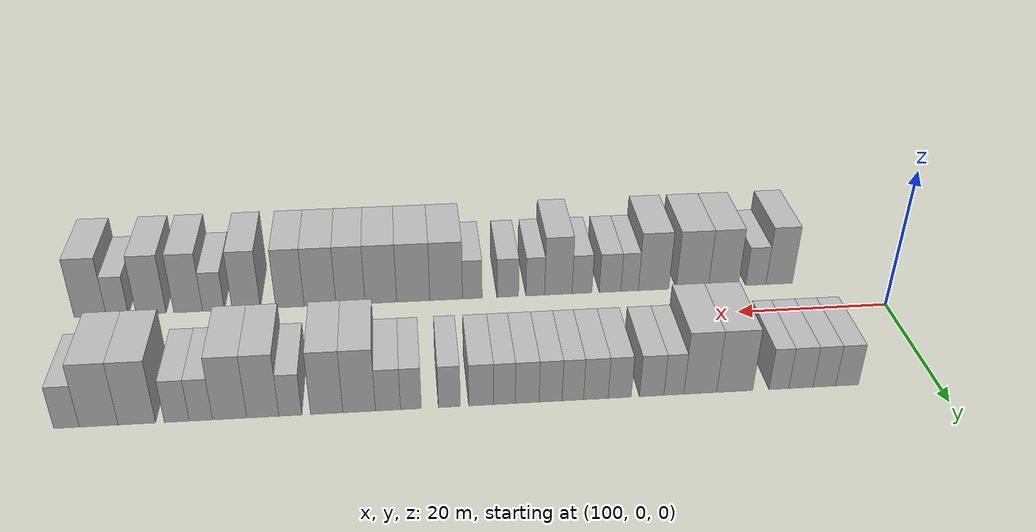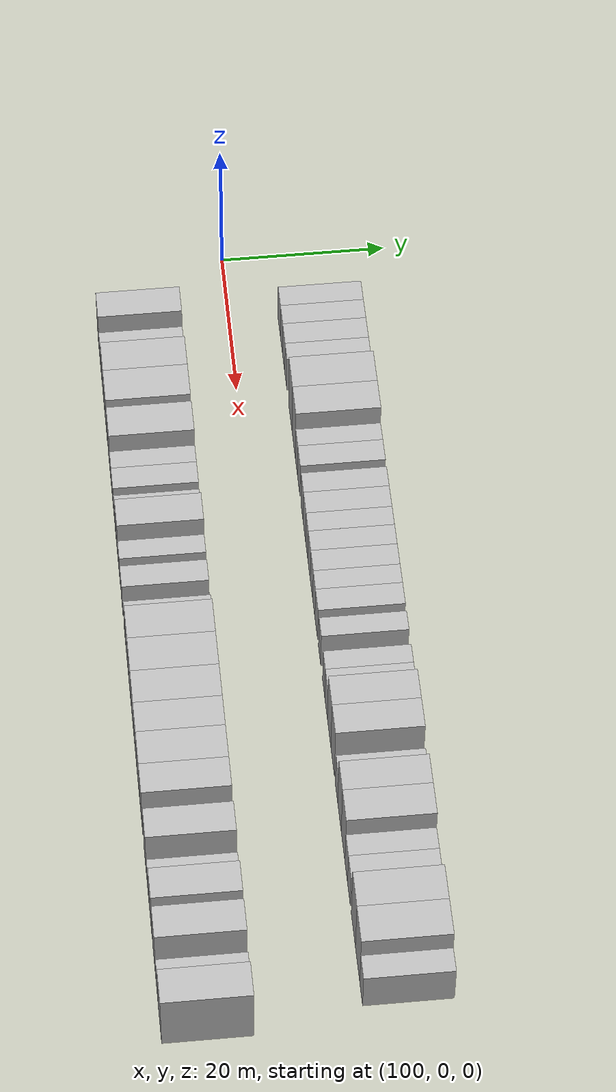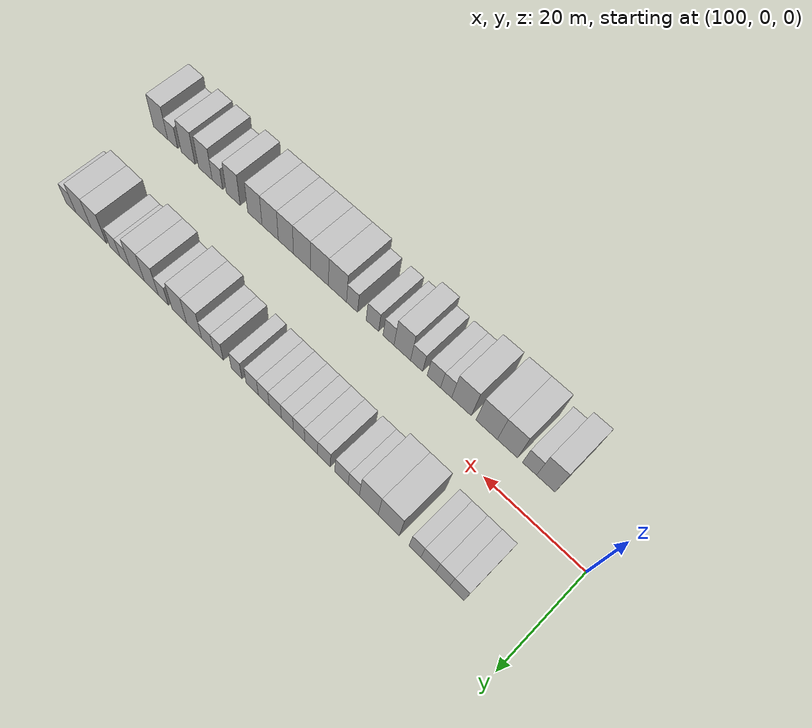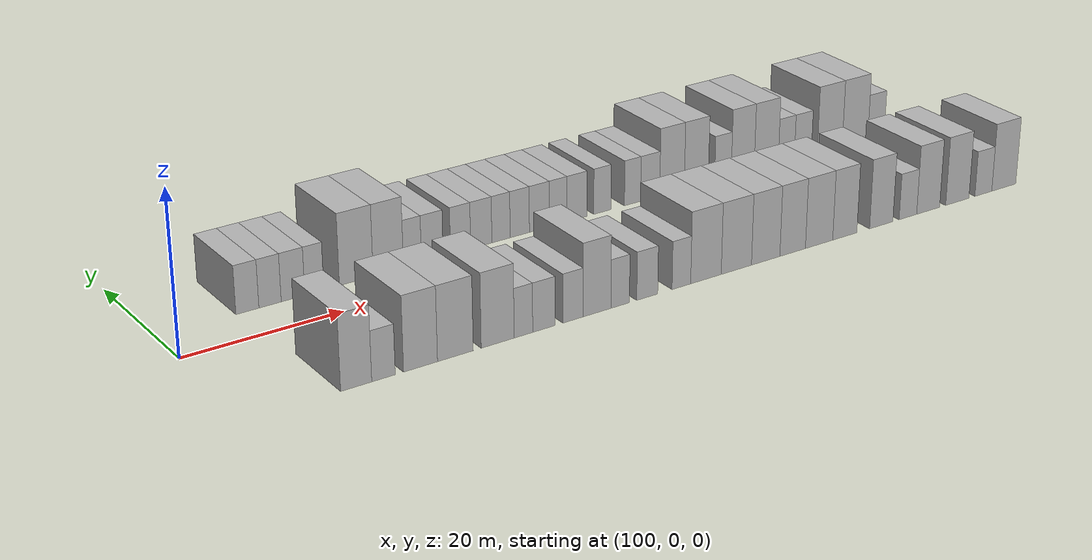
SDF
<sdf version="1.6">
 <world name="default">
  <model name="building_28">
   <static>1</static>
   <pose>111.0552 11.0000 0 0.000000 0.000000 1.570796</pose>
   <link name="link">
    <pose>0 0 3.00 0 0 0</pose>
    <collision name="collision"><geometry><box><size>10.0000 2.8328 6.0000</size></box></geometry></collision>
    <visual name="visual">
     <cast_shadows>0</cast_shadows>
     <geometry><box><size>10.0000 2.8328 6.0000</size></box></geometry>
     <material>
      <script>
       <uri>model://HANNAS_wall/materials/scripts</uri>
       <uri>model://HANNAS_wall/materials/textures</uri>
       <name>vrc/HANNAS_wall</name>
      </script>
     </material>
    </visual>
   </link>
  </model>
  <model name="building_29">
   <static>1</static>
   <pose>113.8611 11.0000 0 0.000000 0.000000 1.570796</pose>
   <link name="link">
    <pose>0 0 3.00 0 0 0</pose>
    <collision name="collision"><geometry><box><size>10.0000 2.7790 6.0000</size></box></geometry></collision>
    <visual name="visual">
     <cast_shadows>0</cast_shadows>
     <geometry><box><size>10.0000 2.7790 6.0000</size></box></geometry>
     <material>
      <script>
       <uri>model://HANNAS_wall/materials/scripts</uri>
       <uri>model://HANNAS_wall/materials/textures</uri>
       <name>vrc/HANNAS_wall</name>
      </script>
     </material>
    </visual>
   </link>
  </model>
  <model name="building_30">
   <static>1</static>
   <pose>116.7405 11.0000 0 0.000000 0.000000 1.570796</pose>
   <link name="link">
    <pose>0 0 3.00 0 0 0</pose>
    <collision name="collision"><geometry><box><size>10.0000 2.9799 6.0000</size></box></geometry></collision>
    <visual name="visual">
     <cast_shadows>0</cast_shadows>
     <geometry><box><size>10.0000 2.9799 6.0000</size></box></geometry>
     <material>
      <script>
       <uri>model://HANNAS_wall/materials/scripts</uri>
       <uri>model://HANNAS_wall/materials/textures</uri>
       <name>vrc/HANNAS_wall</name>
      </script>
     </material>
    </visual>
   </link>
  </model>
  <model name="building_31">
   <static>1</static>
   <pose>119.4345 11.0000 0 0.000000 0.000000 1.570796</pose>
   <link name="link">
    <pose>0 0 3.00 0 0 0</pose>
    <collision name="collision"><geometry><box><size>10.0000 2.4082 6.0000</size></box></geometry></collision>
    <visual name="visual">
     <cast_shadows>0</cast_shadows>
     <geometry><box><size>10.0000 2.4082 6.0000</size></box></geometry>
     <material>
      <script>
       <uri>model://HANNAS_wall/materials/scripts</uri>
       <uri>model://HANNAS_wall/materials/textures</uri>
       <name>vrc/HANNAS_wall</name>
      </script>
     </material>
    </visual>
   </link>
  </model>
  <model name="building_32">
   <static>1</static>
   <pose>124.8365 11.0000 0 0.000000 0.000000 1.570796</pose>
   <link name="link">
    <pose>0 0 4.50 0 0 0</pose>
    <collision name="collision"><geometry><box><size>10.0000 4.3958 9.0000</size></box></geometry></collision>
    <visual name="visual">
     <cast_shadows>0</cast_shadows>
     <geometry><box><size>10.0000 4.3958 9.0000</size></box></geometry>
     <material>
      <script>
       <uri>model://HANNAS_wall/materials/scripts</uri>
       <uri>model://HANNAS_wall/materials/textures</uri>
       <name>vrc/HANNAS_wall</name>
      </script>
     </material>
    </visual>
   </link>
  </model>
  <model name="building_33">
   <static>1</static>
   <pose>129.0354 11.0000 0 0.000000 0.000000 1.570796</pose>
   <link name="link">
    <pose>0 0 4.50 0 0 0</pose>
    <collision name="collision"><geometry><box><size>10.0000 4.0018 9.0000</size></box></geometry></collision>
    <visual name="visual">
     <cast_shadows>0</cast_shadows>
     <geometry><box><size>10.0000 4.0018 9.0000</size></box></geometry>
     <material>
      <script>
       <uri>model://HANNAS_wall/materials/scripts</uri>
       <uri>model://HANNAS_wall/materials/textures</uri>
       <name>vrc/HANNAS_wall</name>
      </script>
     </material>
    </visual>
   </link>
  </model>
  <model name="building_34">
   <static>1</static>
   <pose>132.2460 11.0000 0 0.000000 0.000000 1.570796</pose>
   <link name="link">
    <pose>0 0 3.00 0 0 0</pose>
    <collision name="collision"><geometry><box><size>10.0000 2.4194 6.0000</size></box></geometry></collision>
    <visual name="visual">
     <cast_shadows>0</cast_shadows>
     <geometry><box><size>10.0000 2.4194 6.0000</size></box></geometry>
     <material>
      <script>
       <uri>model://HANNAS_wall/materials/scripts</uri>
       <uri>model://HANNAS_wall/materials/textures</uri>
       <name>vrc/HANNAS_wall</name>
      </script>
     </material>
    </visual>
   </link>
  </model>
  <model name="building_35">
   <static>1</static>
   <pose>134.9258 11.0000 0 0.000000 0.000000 1.570796</pose>
   <link name="link">
    <pose>0 0 3.00 0 0 0</pose>
    <collision name="collision"><geometry><box><size>10.0000 2.9403 6.0000</size></box></geometry></collision>
    <visual name="visual">
     <cast_shadows>0</cast_shadows>
     <geometry><box><size>10.0000 2.9403 6.0000</size></box></geometry>
     <material>
      <script>
       <uri>model://HANNAS_wall/materials/scripts</uri>
       <uri>model://HANNAS_wall/materials/textures</uri>
       <name>vrc/HANNAS_wall</name>
      </script>
     </material>
    </visual>
   </link>
  </model>
  <model name="building_36">
   <static>1</static>
   <pose>138.7817 11.0000 0 0.000000 0.000000 1.570796</pose>
   <link name="link">
    <pose>0 0 3.00 0 0 0</pose>
    <collision name="collision"><geometry><box><size>10.0000 2.7715 6.0000</size></box></geometry></collision>
    <visual name="visual">
     <cast_shadows>0</cast_shadows>
     <geometry><box><size>10.0000 2.7715 6.0000</size></box></geometry>
     <material>
      <script>
       <uri>model://HANNAS_wall/materials/scripts</uri>
       <uri>model://HANNAS_wall/materials/textures</uri>
       <name>vrc/HANNAS_wall</name>
      </script>
     </material>
    </visual>
   </link>
  </model>
  <model name="building_37">
   <static>1</static>
   <pose>141.6427 11.0000 0 0.000000 0.000000 1.570796</pose>
   <link name="link">
    <pose>0 0 3.00 0 0 0</pose>
    <collision name="collision"><geometry><box><size>10.0000 2.9504 6.0000</size></box></geometry></collision>
    <visual name="visual">
     <cast_shadows>0</cast_shadows>
     <geometry><box><size>10.0000 2.9504 6.0000</size></box></geometry>
     <material>
      <script>
       <uri>model://HANNAS_wall/materials/scripts</uri>
       <uri>model://HANNAS_wall/materials/textures</uri>
       <name>vrc/HANNAS_wall</name>
      </script>
     </material>
    </visual>
   </link>
  </model>
  <model name="building_38">
   <static>1</static>
   <pose>144.4017 11.0000 0 0.000000 0.000000 1.570796</pose>
   <link name="link">
    <pose>0 0 3.00 0 0 0</pose>
    <collision name="collision"><geometry><box><size>10.0000 2.5678 6.0000</size></box></geometry></collision>
    <visual name="visual">
     <cast_shadows>0</cast_shadows>
     <geometry><box><size>10.0000 2.5678 6.0000</size></box></geometry>
     <material>
      <script>
       <uri>model://HANNAS_wall/materials/scripts</uri>
       <uri>model://HANNAS_wall/materials/textures</uri>
       <name>vrc/HANNAS_wall</name>
      </script>
     </material>
    </visual>
   </link>
  </model>
  <model name="building_39">
   <static>1</static>
   <pose>147.0537 11.0000 0 0.000000 0.000000 1.570796</pose>
   <link name="link">
    <pose>0 0 3.00 0 0 0</pose>
    <collision name="collision"><geometry><box><size>10.0000 2.7360 6.0000</size></box></geometry></collision>
    <visual name="visual">
     <cast_shadows>0</cast_shadows>
     <geometry><box><size>10.0000 2.7360 6.0000</size></box></geometry>
     <material>
      <script>
       <uri>model://HANNAS_wall/materials/scripts</uri>
       <uri>model://HANNAS_wall/materials/textures</uri>
       <name>vrc/HANNAS_wall</name>
      </script>
     </material>
    </visual>
   </link>
  </model>
  <model name="building_40">
   <static>1</static>
   <pose>149.8447 11.0000 0 0.000000 0.000000 1.570796</pose>
   <link name="link">
    <pose>0 0 3.00 0 0 0</pose>
    <collision name="collision"><geometry><box><size>10.0000 2.8459 6.0000</size></box></geometry></collision>
    <visual name="visual">
     <cast_shadows>0</cast_shadows>
     <geometry><box><size>10.0000 2.8459 6.0000</size></box></geometry>
     <material>
      <script>
       <uri>model://HANNAS_wall/materials/scripts</uri>
       <uri>model://HANNAS_wall/materials/textures</uri>
       <name>vrc/HANNAS_wall</name>
      </script>
     </material>
    </visual>
   </link>
  </model>
  <model name="building_41">
   <static>1</static>
   <pose>152.5517 11.0000 0 0.000000 0.000000 1.570796</pose>
   <link name="link">
    <pose>0 0 3.00 0 0 0</pose>
    <collision name="collision"><geometry><box><size>10.0000 2.5683 6.0000</size></box></geometry></collision>
    <visual name="visual">
     <cast_shadows>0</cast_shadows>
     <geometry><box><size>10.0000 2.5683 6.0000</size></box></geometry>
     <material>
      <script>
       <uri>model://HANNAS_wall/materials/scripts</uri>
       <uri>model://HANNAS_wall/materials/textures</uri>
       <name>vrc/HANNAS_wall</name>
      </script>
     </material>
    </visual>
   </link>
  </model>
  <model name="building_42">
   <static>1</static>
   <pose>155.3014 11.0000 0 0.000000 0.000000 1.570796</pose>
   <link name="link">
    <pose>0 0 3.00 0 0 0</pose>
    <collision name="collision"><geometry><box><size>10.0000 2.9310 6.0000</size></box></geometry></collision>
    <visual name="visual">
     <cast_shadows>0</cast_shadows>
     <geometry><box><size>10.0000 2.9310 6.0000</size></box></geometry>
     <material>
      <script>
       <uri>model://HANNAS_wall/materials/scripts</uri>
       <uri>model://HANNAS_wall/materials/textures</uri>
       <name>vrc/HANNAS_wall</name>
      </script>
     </material>
    </visual>
   </link>
  </model>
  <model name="building_43">
   <static>1</static>
   <pose>159.0528 11.0000 0 0.000000 0.000000 1.570796</pose>
   <link name="link">
    <pose>0 0 3.00 0 0 0</pose>
    <collision name="collision"><geometry><box><size>10.0000 2.5717 6.0000</size></box></geometry></collision>
    <visual name="visual">
     <cast_shadows>0</cast_shadows>
     <geometry><box><size>10.0000 2.5717 6.0000</size></box></geometry>
     <material>
      <script>
       <uri>model://HANNAS_wall/materials/scripts</uri>
       <uri>model://HANNAS_wall/materials/textures</uri>
       <name>vrc/HANNAS_wall</name>
      </script>
     </material>
    </visual>
   </link>
  </model>
  <model name="building_44">
   <static>1</static>
   <pose>163.5601 11.0000 0 0.000000 0.000000 1.570796</pose>
   <link name="link">
    <pose>0 0 3.00 0 0 0</pose>
    <collision name="collision"><geometry><box><size>10.0000 2.4428 6.0000</size></box></geometry></collision>
    <visual name="visual">
     <cast_shadows>0</cast_shadows>
     <geometry><box><size>10.0000 2.4428 6.0000</size></box></geometry>
     <material>
      <script>
       <uri>model://HANNAS_wall/materials/scripts</uri>
       <uri>model://HANNAS_wall/materials/textures</uri>
       <name>vrc/HANNAS_wall</name>
      </script>
     </material>
    </visual>
   </link>
  </model>
  <model name="building_45">
   <static>1</static>
   <pose>166.2417 11.0000 0 0.000000 0.000000 1.570796</pose>
   <link name="link">
    <pose>0 0 3.00 0 0 0</pose>
    <collision name="collision"><geometry><box><size>10.0000 2.9204 6.0000</size></box></geometry></collision>
    <visual name="visual">
     <cast_shadows>0</cast_shadows>
     <geometry><box><size>10.0000 2.9204 6.0000</size></box></geometry>
     <material>
      <script>
       <uri>model://HANNAS_wall/materials/scripts</uri>
       <uri>model://HANNAS_wall/materials/textures</uri>
       <name>vrc/HANNAS_wall</name>
      </script>
     </material>
    </visual>
   </link>
  </model>
  <model name="building_46">
   <static>1</static>
   <pose>169.6013 11.0000 0 0.000000 0.000000 1.570796</pose>
   <link name="link">
    <pose>0 0 4.50 0 0 0</pose>
    <collision name="collision"><geometry><box><size>10.0000 3.7989 9.0000</size></box></geometry></collision>
    <visual name="visual">
     <cast_shadows>0</cast_shadows>
     <geometry><box><size>10.0000 3.7989 9.0000</size></box></geometry>
     <material>
      <script>
       <uri>model://HANNAS_wall/materials/scripts</uri>
       <uri>model://HANNAS_wall/materials/textures</uri>
       <name>vrc/HANNAS_wall</name>
      </script>
     </material>
    </visual>
   </link>
  </model>
  <model name="building_47">
   <static>1</static>
   <pose>173.3789 11.0000 0 0.000000 0.000000 1.570796</pose>
   <link name="link">
    <pose>0 0 4.50 0 0 0</pose>
    <collision name="collision"><geometry><box><size>10.0000 3.7563 9.0000</size></box></geometry></collision>
    <visual name="visual">
     <cast_shadows>0</cast_shadows>
     <geometry><box><size>10.0000 3.7563 9.0000</size></box></geometry>
     <material>
      <script>
       <uri>model://HANNAS_wall/materials/scripts</uri>
       <uri>model://HANNAS_wall/materials/textures</uri>
       <name>vrc/HANNAS_wall</name>
      </script>
     </material>
    </visual>
   </link>
  </model>
  <model name="building_48">
   <static>1</static>
   <pose>177.5787 11.0000 0 0.000000 0.000000 1.570796</pose>
   <link name="link">
    <pose>0 0 3.00 0 0 0</pose>
    <collision name="collision"><geometry><box><size>10.0000 2.6434 6.0000</size></box></geometry></collision>
    <visual name="visual">
     <cast_shadows>0</cast_shadows>
     <geometry><box><size>10.0000 2.6434 6.0000</size></box></geometry>
     <material>
      <script>
       <uri>model://HANNAS_wall/materials/scripts</uri>
       <uri>model://HANNAS_wall/materials/textures</uri>
       <name>vrc/HANNAS_wall</name>
      </script>
     </material>
    </visual>
   </link>
  </model>
  <model name="building_49">
   <static>1</static>
   <pose>180.7500 11.0000 0 0.000000 0.000000 1.570796</pose>
   <link name="link">
    <pose>0 0 4.50 0 0 0</pose>
    <collision name="collision"><geometry><box><size>10.0000 3.6992 9.0000</size></box></geometry></collision>
    <visual name="visual">
     <cast_shadows>0</cast_shadows>
     <geometry><box><size>10.0000 3.6992 9.0000</size></box></geometry>
     <material>
      <script>
       <uri>model://HANNAS_wall/materials/scripts</uri>
       <uri>model://HANNAS_wall/materials/textures</uri>
       <name>vrc/HANNAS_wall</name>
      </script>
     </material>
    </visual>
   </link>
  </model>
  <model name="building_50">
   <static>1</static>
   <pose>184.5657 11.0000 0 0.000000 0.000000 1.570796</pose>
   <link name="link">
    <pose>0 0 4.50 0 0 0</pose>
    <collision name="collision"><geometry><box><size>10.0000 3.9321 9.0000</size></box></geometry></collision>
    <visual name="visual">
     <cast_shadows>0</cast_shadows>
     <geometry><box><size>10.0000 3.9321 9.0000</size></box></geometry>
     <material>
      <script>
       <uri>model://HANNAS_wall/materials/scripts</uri>
       <uri>model://HANNAS_wall/materials/textures</uri>
       <name>vrc/HANNAS_wall</name>
      </script>
     </material>
    </visual>
   </link>
  </model>
  <model name="building_51">
   <static>1</static>
   <pose>187.8620 11.0000 0 0.000000 0.000000 1.570796</pose>
   <link name="link">
    <pose>0 0 3.00 0 0 0</pose>
    <collision name="collision"><geometry><box><size>10.0000 2.6605 6.0000</size></box></geometry></collision>
    <visual name="visual">
     <cast_shadows>0</cast_shadows>
     <geometry><box><size>10.0000 2.6605 6.0000</size></box></geometry>
     <material>
      <script>
       <uri>model://HANNAS_wall/materials/scripts</uri>
       <uri>model://HANNAS_wall/materials/textures</uri>
       <name>vrc/HANNAS_wall</name>
      </script>
     </material>
    </visual>
   </link>
  </model>
  <model name="building_52">
   <static>1</static>
   <pose>190.6057 11.0000 0 0.000000 0.000000 1.570796</pose>
   <link name="link">
    <pose>0 0 3.00 0 0 0</pose>
    <collision name="collision"><geometry><box><size>10.0000 2.8269 6.0000</size></box></geometry></collision>
    <visual name="visual">
     <cast_shadows>0</cast_shadows>
     <geometry><box><size>10.0000 2.8269 6.0000</size></box></geometry>
     <material>
      <script>
       <uri>model://HANNAS_wall/materials/scripts</uri>
       <uri>model://HANNAS_wall/materials/textures</uri>
       <name>vrc/HANNAS_wall</name>
      </script>
     </material>
    </visual>
   </link>
  </model>
  <model name="building_53">
   <static>1</static>
   <pose>195.1396 11.0000 0 0.000000 0.000000 1.570796</pose>
   <link name="link">
    <pose>0 0 4.50 0 0 0</pose>
    <collision name="collision"><geometry><box><size>10.0000 4.2410 9.0000</size></box></geometry></collision>
    <visual name="visual">
     <cast_shadows>0</cast_shadows>
     <geometry><box><size>10.0000 4.2410 9.0000</size></box></geometry>
     <material>
      <script>
       <uri>model://HANNAS_wall/materials/scripts</uri>
       <uri>model://HANNAS_wall/materials/textures</uri>
       <name>vrc/HANNAS_wall</name>
      </script>
     </material>
    </visual>
   </link>
  </model>
  <model name="building_54">
   <static>1</static>
   <pose>199.4569 11.0000 0 0.000000 0.000000 1.570796</pose>
   <link name="link">
    <pose>0 0 4.50 0 0 0</pose>
    <collision name="collision"><geometry><box><size>10.0000 4.3937 9.0000</size></box></geometry></collision>
    <visual name="visual">
     <cast_shadows>0</cast_shadows>
     <geometry><box><size>10.0000 4.3937 9.0000</size></box></geometry>
     <material>
      <script>
       <uri>model://HANNAS_wall/materials/scripts</uri>
       <uri>model://HANNAS_wall/materials/textures</uri>
       <name>vrc/HANNAS_wall</name>
      </script>
     </material>
    </visual>
   </link>
  </model>
  <model name="building_55">
   <static>1</static>
   <pose>203.0879 11.0000 0 0.000000 0.000000 1.570796</pose>
   <link name="link">
    <pose>0 0 3.00 0 0 0</pose>
    <collision name="collision"><geometry><box><size>10.0000 2.8683 6.0000</size></box></geometry></collision>
    <visual name="visual">
     <cast_shadows>0</cast_shadows>
     <geometry><box><size>10.0000 2.8683 6.0000</size></box></geometry>
     <material>
      <script>
       <uri>model://HANNAS_wall/materials/scripts</uri>
       <uri>model://HANNAS_wall/materials/textures</uri>
       <name>vrc/HANNAS_wall</name>
      </script>
     </material>
    </visual>
   </link>
  </model>
  <model name="building_81">
   <static>1</static>
   <pose>112.6867 -11.0000 0 0.000000 0.000000 1.570796</pose>
   <link name="link">
    <pose>0 0 4.50 0 0 0</pose>
    <collision name="collision"><geometry><box><size>10.0000 3.6883 9.0000</size></box></geometry></collision>
    <visual name="visual">
     <cast_shadows>0</cast_shadows>
     <geometry><box><size>10.0000 3.6883 9.0000</size></box></geometry>
     <material>
      <script>
       <uri>model://HANNAS_wall/materials/scripts</uri>
       <uri>model://HANNAS_wall/materials/textures</uri>
       <name>vrc/HANNAS_wall</name>
      </script>
     </material>
    </visual>
   </link>
  </model>
  <model name="building_82">
   <static>1</static>
   <pose>115.9446 -11.0000 0 0.000000 0.000000 1.570796</pose>
   <link name="link">
    <pose>0 0 3.00 0 0 0</pose>
    <collision name="collision"><geometry><box><size>10.0000 2.8275 6.0000</size></box></geometry></collision>
    <visual name="visual">
     <cast_shadows>0</cast_shadows>
     <geometry><box><size>10.0000 2.8275 6.0000</size></box></geometry>
     <material>
      <script>
       <uri>model://HANNAS_wall/materials/scripts</uri>
       <uri>model://HANNAS_wall/materials/textures</uri>
       <name>vrc/HANNAS_wall</name>
      </script>
     </material>
    </visual>
   </link>
  </model>
  <model name="building_83">
   <static>1</static>
   <pose>120.4392 -11.0000 0 0.000000 0.000000 1.570796</pose>
   <link name="link">
    <pose>0 0 4.50 0 0 0</pose>
    <collision name="collision"><geometry><box><size>10.0000 4.1617 9.0000</size></box></geometry></collision>
    <visual name="visual">
     <cast_shadows>0</cast_shadows>
     <geometry><box><size>10.0000 4.1617 9.0000</size></box></geometry>
     <material>
      <script>
       <uri>model://HANNAS_wall/materials/scripts</uri>
       <uri>model://HANNAS_wall/materials/textures</uri>
       <name>vrc/HANNAS_wall</name>
      </script>
     </material>
    </visual>
   </link>
  </model>
  <model name="building_84">
   <static>1</static>
   <pose>124.7519 -11.0000 0 0.000000 0.000000 1.570796</pose>
   <link name="link">
    <pose>0 0 4.50 0 0 0</pose>
    <collision name="collision"><geometry><box><size>10.0000 4.4636 9.0000</size></box></geometry></collision>
    <visual name="visual">
     <cast_shadows>0</cast_shadows>
     <geometry><box><size>10.0000 4.4636 9.0000</size></box></geometry>
     <material>
      <script>
       <uri>model://HANNAS_wall/materials/scripts</uri>
       <uri>model://HANNAS_wall/materials/textures</uri>
       <name>vrc/HANNAS_wall</name>
      </script>
     </material>
    </visual>
   </link>
  </model>
  <model name="building_85">
   <static>1</static>
   <pose>130.0902 -11.0000 0 0.000000 0.000000 1.570796</pose>
   <link name="link">
    <pose>0 0 4.50 0 0 0</pose>
    <collision name="collision"><geometry><box><size>10.0000 4.2130 9.0000</size></box></geometry></collision>
    <visual name="visual">
     <cast_shadows>0</cast_shadows>
     <geometry><box><size>10.0000 4.2130 9.0000</size></box></geometry>
     <material>
      <script>
       <uri>model://HANNAS_wall/materials/scripts</uri>
       <uri>model://HANNAS_wall/materials/textures</uri>
       <name>vrc/HANNAS_wall</name>
      </script>
     </material>
    </visual>
   </link>
  </model>
  <model name="building_86">
   <static>1</static>
   <pose>133.3975 -11.0000 0 0.000000 0.000000 1.570796</pose>
   <link name="link">
    <pose>0 0 3.00 0 0 0</pose>
    <collision name="collision"><geometry><box><size>10.0000 2.4016 6.0000</size></box></geometry></collision>
    <visual name="visual">
     <cast_shadows>0</cast_shadows>
     <geometry><box><size>10.0000 2.4016 6.0000</size></box></geometry>
     <material>
      <script>
       <uri>model://HANNAS_wall/materials/scripts</uri>
       <uri>model://HANNAS_wall/materials/textures</uri>
       <name>vrc/HANNAS_wall</name>
      </script>
     </material>
    </visual>
   </link>
  </model>
  <model name="building_87">
   <static>1</static>
   <pose>136.0732 -11.0000 0 0.000000 0.000000 1.570796</pose>
   <link name="link">
    <pose>0 0 3.00 0 0 0</pose>
    <collision name="collision"><geometry><box><size>10.0000 2.9498 6.0000</size></box></geometry></collision>
    <visual name="visual">
     <cast_shadows>0</cast_shadows>
     <geometry><box><size>10.0000 2.9498 6.0000</size></box></geometry>
     <material>
      <script>
       <uri>model://HANNAS_wall/materials/scripts</uri>
       <uri>model://HANNAS_wall/materials/textures</uri>
       <name>vrc/HANNAS_wall</name>
      </script>
     </material>
    </visual>
   </link>
  </model>
  <model name="building_88">
   <static>1</static>
   <pose>139.9041 -11.0000 0 0.000000 0.000000 1.570796</pose>
   <link name="link">
    <pose>0 0 3.00 0 0 0</pose>
    <collision name="collision"><geometry><box><size>10.0000 2.7122 6.0000</size></box></geometry></collision>
    <visual name="visual">
     <cast_shadows>0</cast_shadows>
     <geometry><box><size>10.0000 2.7122 6.0000</size></box></geometry>
     <material>
      <script>
       <uri>model://HANNAS_wall/materials/scripts</uri>
       <uri>model://HANNAS_wall/materials/textures</uri>
       <name>vrc/HANNAS_wall</name>
      </script>
     </material>
    </visual>
   </link>
  </model>
  <model name="building_89">
   <static>1</static>
   <pose>143.1321 -11.0000 0 0.000000 0.000000 1.570796</pose>
   <link name="link">
    <pose>0 0 4.50 0 0 0</pose>
    <collision name="collision"><geometry><box><size>10.0000 3.7438 9.0000</size></box></geometry></collision>
    <visual name="visual">
     <cast_shadows>0</cast_shadows>
     <geometry><box><size>10.0000 3.7438 9.0000</size></box></geometry>
     <material>
      <script>
       <uri>model://HANNAS_wall/materials/scripts</uri>
       <uri>model://HANNAS_wall/materials/textures</uri>
       <name>vrc/HANNAS_wall</name>
      </script>
     </material>
    </visual>
   </link>
  </model>
  <model name="building_90">
   <static>1</static>
   <pose>146.2658 -11.0000 0 0.000000 0.000000 1.570796</pose>
   <link name="link">
    <pose>0 0 3.00 0 0 0</pose>
    <collision name="collision"><geometry><box><size>10.0000 2.5235 6.0000</size></box></geometry></collision>
    <visual name="visual">
     <cast_shadows>0</cast_shadows>
     <geometry><box><size>10.0000 2.5235 6.0000</size></box></geometry>
     <material>
      <script>
       <uri>model://HANNAS_wall/materials/scripts</uri>
       <uri>model://HANNAS_wall/materials/textures</uri>
       <name>vrc/HANNAS_wall</name>
      </script>
     </material>
    </visual>
   </link>
  </model>
  <model name="building_91">
   <static>1</static>
   <pose>149.9847 -11.0000 0 0.000000 0.000000 1.570796</pose>
   <link name="link">
    <pose>0 0 3.00 0 0 0</pose>
    <collision name="collision"><geometry><box><size>10.0000 2.9143 6.0000</size></box></geometry></collision>
    <visual name="visual">
     <cast_shadows>0</cast_shadows>
     <geometry><box><size>10.0000 2.9143 6.0000</size></box></geometry>
     <material>
      <script>
       <uri>model://HANNAS_wall/materials/scripts</uri>
       <uri>model://HANNAS_wall/materials/textures</uri>
       <name>vrc/HANNAS_wall</name>
      </script>
     </material>
    </visual>
   </link>
  </model>
  <model name="building_92">
   <static>1</static>
   <pose>154.7613 -11.0000 0 0.000000 0.000000 1.570796</pose>
   <link name="link">
    <pose>0 0 3.00 0 0 0</pose>
    <collision name="collision"><geometry><box><size>10.0000 2.6389 6.0000</size></box></geometry></collision>
    <visual name="visual">
     <cast_shadows>0</cast_shadows>
     <geometry><box><size>10.0000 2.6389 6.0000</size></box></geometry>
     <material>
      <script>
       <uri>model://HANNAS_wall/materials/scripts</uri>
       <uri>model://HANNAS_wall/materials/textures</uri>
       <name>vrc/HANNAS_wall</name>
      </script>
     </material>
    </visual>
   </link>
  </model>
  <model name="building_93">
   <static>1</static>
   <pose>158.2723 -11.0000 0 0.000000 0.000000 1.570796</pose>
   <link name="link">
    <pose>0 0 4.50 0 0 0</pose>
    <collision name="collision"><geometry><box><size>10.0000 4.3830 9.0000</size></box></geometry></collision>
    <visual name="visual">
     <cast_shadows>0</cast_shadows>
     <geometry><box><size>10.0000 4.3830 9.0000</size></box></geometry>
     <material>
      <script>
       <uri>model://HANNAS_wall/materials/scripts</uri>
       <uri>model://HANNAS_wall/materials/textures</uri>
       <name>vrc/HANNAS_wall</name>
      </script>
     </material>
    </visual>
   </link>
  </model>
  <model name="building_94">
   <static>1</static>
   <pose>162.6710 -11.0000 0 0.000000 0.000000 1.570796</pose>
   <link name="link">
    <pose>0 0 4.50 0 0 0</pose>
    <collision name="collision"><geometry><box><size>10.0000 4.4144 9.0000</size></box></geometry></collision>
    <visual name="visual">
     <cast_shadows>0</cast_shadows>
     <geometry><box><size>10.0000 4.4144 9.0000</size></box></geometry>
     <material>
      <script>
       <uri>model://HANNAS_wall/materials/scripts</uri>
       <uri>model://HANNAS_wall/materials/textures</uri>
       <name>vrc/HANNAS_wall</name>
      </script>
     </material>
    </visual>
   </link>
  </model>
  <model name="building_95">
   <static>1</static>
   <pose>166.9855 -11.0000 0 0.000000 0.000000 1.570796</pose>
   <link name="link">
    <pose>0 0 4.50 0 0 0</pose>
    <collision name="collision"><geometry><box><size>10.0000 4.2147 9.0000</size></box></geometry></collision>
    <visual name="visual">
     <cast_shadows>0</cast_shadows>
     <geometry><box><size>10.0000 4.2147 9.0000</size></box></geometry>
     <material>
      <script>
       <uri>model://HANNAS_wall/materials/scripts</uri>
       <uri>model://HANNAS_wall/materials/textures</uri>
       <name>vrc/HANNAS_wall</name>
      </script>
     </material>
    </visual>
   </link>
  </model>
  <model name="building_96">
   <static>1</static>
   <pose>171.0212 -11.0000 0 0.000000 0.000000 1.570796</pose>
   <link name="link">
    <pose>0 0 4.50 0 0 0</pose>
    <collision name="collision"><geometry><box><size>10.0000 3.8568 9.0000</size></box></geometry></collision>
    <visual name="visual">
     <cast_shadows>0</cast_shadows>
     <geometry><box><size>10.0000 3.8568 9.0000</size></box></geometry>
     <material>
      <script>
       <uri>model://HANNAS_wall/materials/scripts</uri>
       <uri>model://HANNAS_wall/materials/textures</uri>
       <name>vrc/HANNAS_wall</name>
      </script>
     </material>
    </visual>
   </link>
  </model>
  <model name="building_97">
   <static>1</static>
   <pose>175.0387 -11.0000 0 0.000000 0.000000 1.570796</pose>
   <link name="link">
    <pose>0 0 4.50 0 0 0</pose>
    <collision name="collision"><geometry><box><size>10.0000 4.1782 9.0000</size></box></geometry></collision>
    <visual name="visual">
     <cast_shadows>0</cast_shadows>
     <geometry><box><size>10.0000 4.1782 9.0000</size></box></geometry>
     <material>
      <script>
       <uri>model://HANNAS_wall/materials/scripts</uri>
       <uri>model://HANNAS_wall/materials/textures</uri>
       <name>vrc/HANNAS_wall</name>
      </script>
     </material>
    </visual>
   </link>
  </model>
  <model name="building_98">
   <static>1</static>
   <pose>179.0068 -11.0000 0 0.000000 0.000000 1.570796</pose>
   <link name="link">
    <pose>0 0 4.50 0 0 0</pose>
    <collision name="collision"><geometry><box><size>10.0000 3.7579 9.0000</size></box></geometry></collision>
    <visual name="visual">
     <cast_shadows>0</cast_shadows>
     <geometry><box><size>10.0000 3.7579 9.0000</size></box></geometry>
     <material>
      <script>
       <uri>model://HANNAS_wall/materials/scripts</uri>
       <uri>model://HANNAS_wall/materials/textures</uri>
       <name>vrc/HANNAS_wall</name>
      </script>
     </material>
    </visual>
   </link>
  </model>
  <model name="building_99">
   <static>1</static>
   <pose>184.7362 -11.0000 0 0.000000 0.000000 1.570796</pose>
   <link name="link">
    <pose>0 0 4.50 0 0 0</pose>
    <collision name="collision"><geometry><box><size>10.0000 3.7010 9.0000</size></box></geometry></collision>
    <visual name="visual">
     <cast_shadows>0</cast_shadows>
     <geometry><box><size>10.0000 3.7010 9.0000</size></box></geometry>
     <material>
      <script>
       <uri>model://HANNAS_wall/materials/scripts</uri>
       <uri>model://HANNAS_wall/materials/textures</uri>
       <name>vrc/HANNAS_wall</name>
      </script>
     </material>
    </visual>
   </link>
  </model>
  <model name="building_100">
   <static>1</static>
   <pose>189.0088 -11.0000 0 0.000000 0.000000 1.570796</pose>
   <link name="link">
    <pose>0 0 3.00 0 0 0</pose>
    <collision name="collision"><geometry><box><size>10.0000 2.8442 6.0000</size></box></geometry></collision>
    <visual name="visual">
     <cast_shadows>0</cast_shadows>
     <geometry><box><size>10.0000 2.8442 6.0000</size></box></geometry>
     <material>
      <script>
       <uri>model://HANNAS_wall/materials/scripts</uri>
       <uri>model://HANNAS_wall/materials/textures</uri>
       <name>vrc/HANNAS_wall</name>
      </script>
     </material>
    </visual>
   </link>
  </model>
  <model name="building_101">
   <static>1</static>
   <pose>192.3061 -11.0000 0 0.000000 0.000000 1.570796</pose>
   <link name="link">
    <pose>0 0 4.50 0 0 0</pose>
    <collision name="collision"><geometry><box><size>10.0000 3.7503 9.0000</size></box></geometry></collision>
    <visual name="visual">
     <cast_shadows>0</cast_shadows>
     <geometry><box><size>10.0000 3.7503 9.0000</size></box></geometry>
     <material>
      <script>
       <uri>model://HANNAS_wall/materials/scripts</uri>
       <uri>model://HANNAS_wall/materials/textures</uri>
       <name>vrc/HANNAS_wall</name>
      </script>
     </material>
    </visual>
   </link>
  </model>
  <model name="building_102">
   <static>1</static>
   <pose>197.1183 -11.0000 0 0.000000 0.000000 1.570796</pose>
   <link name="link">
    <pose>0 0 4.50 0 0 0</pose>
    <collision name="collision"><geometry><box><size>10.0000 3.8742 9.0000</size></box></geometry></collision>
    <visual name="visual">
     <cast_shadows>0</cast_shadows>
     <geometry><box><size>10.0000 3.8742 9.0000</size></box></geometry>
     <material>
      <script>
       <uri>model://HANNAS_wall/materials/scripts</uri>
       <uri>model://HANNAS_wall/materials/textures</uri>
       <name>vrc/HANNAS_wall</name>
      </script>
     </material>
    </visual>
   </link>
  </model>
  <model name="building_103">
   <static>1</static>
   <pose>201.4878 -11.0000 0 0.000000 0.000000 1.570796</pose>
   <link name="link">
    <pose>0 0 3.00 0 0 0</pose>
    <collision name="collision"><geometry><box><size>10.0000 2.8647 6.0000</size></box></geometry></collision>
    <visual name="visual">
     <cast_shadows>0</cast_shadows>
     <geometry><box><size>10.0000 2.8647 6.0000</size></box></geometry>
     <material>
      <script>
       <uri>model://HANNAS_wall/materials/scripts</uri>
       <uri>model://HANNAS_wall/materials/textures</uri>
       <name>vrc/HANNAS_wall</name>
      </script>
     </material>
    </visual>
   </link>
  </model>
  <model name="building_104">
   <static>1</static>
   <pose>204.9736 -11.0000 0 0.000000 0.000000 1.570796</pose>
   <link name="link">
    <pose>0 0 4.50 0 0 0</pose>
    <collision name="collision"><geometry><box><size>10.0000 4.1069 9.0000</size></box></geometry></collision>
    <visual name="visual">
     <cast_shadows>0</cast_shadows>
     <geometry><box><size>10.0000 4.1069 9.0000</size></box></geometry>
     <material>
      <script>
       <uri>model://HANNAS_wall/materials/scripts</uri>
       <uri>model://HANNAS_wall/materials/textures</uri>
       <name>vrc/HANNAS_wall</name>
      </script>
     </material>
    </visual>
   </link>
  </model>
 </world>
</sdf>
